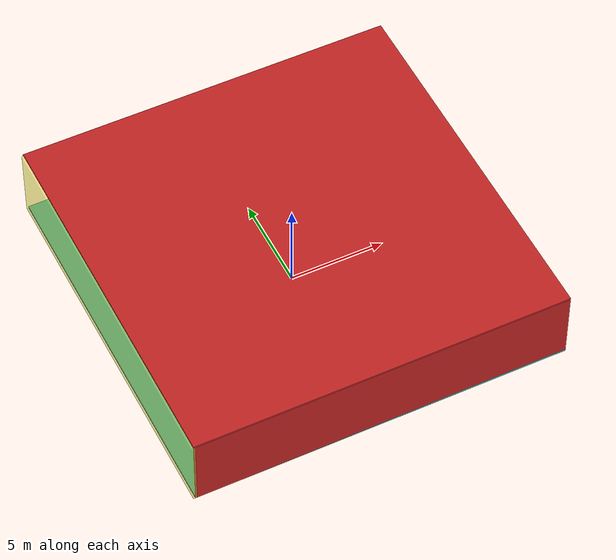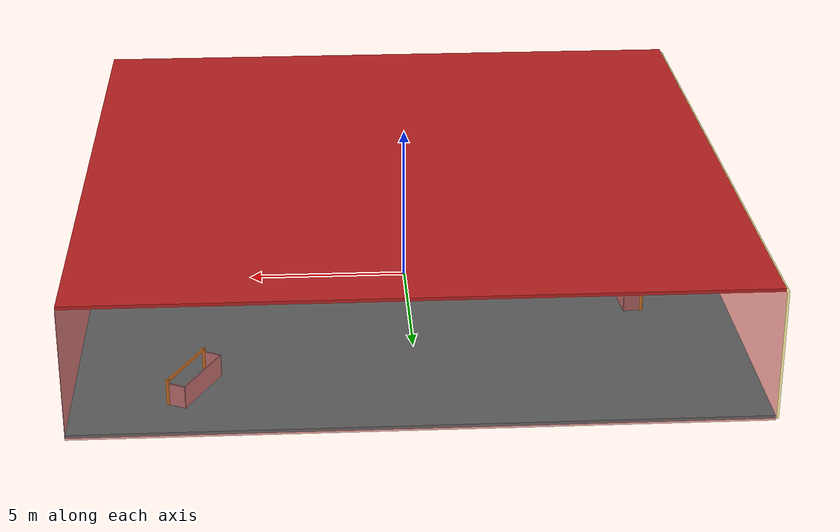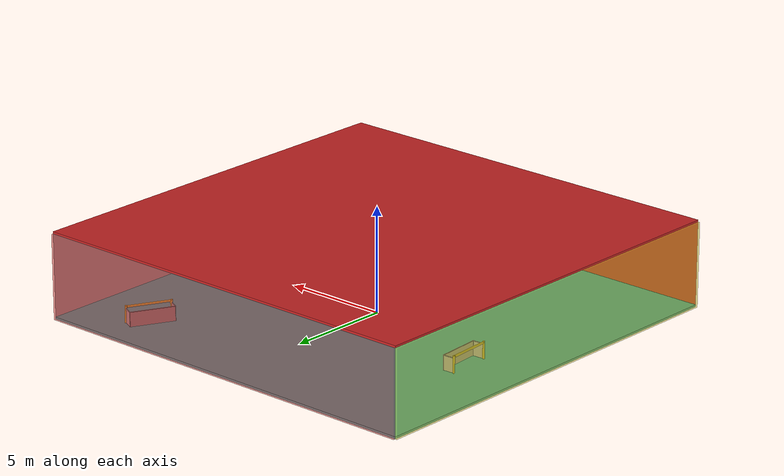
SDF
<sdf version="1.4">
 <world name="default">
  <physics type="ode">
   <max_step_size>0.001</max_step_size>
   <real_time_factor>1</real_time_factor>
   <real_time_update_rate>1000</real_time_update_rate>
   <gravity>0 0 -9.8</gravity>
  </physics>
  <scene><ambient>0.4 0.4 0.4 1</ambient><background>0.7 0.7 0.7 1</background><shadows>1</shadows></scene>
  <model name="Surrounding">
   <static>1</static>
   <link name="Ceiling">
    <collision name="Ceiling_Collision"><geometry><box><size>20 20 0.1</size></box></geometry></collision>
    <visual name="Ceiling_Visual">
     <geometry><box><size>20 20 0.1</size></box></geometry>
     <material>
      <script><uri>file://media/materials/scripts/gazebo.material</uri><name>Gazebo/RedBright</name></script>
     </material>
    </visual>
    <pose>0 0 4.05 0 0 0</pose>
   </link>
   <link name="Wall_South">
    <collision name="Wall_South_Collision">
     <geometry><box><size>20 0 4</size></box></geometry>
     <pose>0 0 2 0 -0 0</pose>
    </collision>
    <visual name="Wall_South_Visual">
     <pose>0 0 2 0 -0 0</pose>
     <geometry><box><size>20 0 4</size></box></geometry>
     <material>
      <script><uri>file://media/materials/scripts/gazebo.material</uri><name>Gazebo/RedGlow</name></script>
     </material>
    </visual>
    <velocity_decay><linear>0</linear><angular>0</angular></velocity_decay>
    <pose>0 -10 0 0 -0 0</pose>
   </link>
   <link name="Wall_East">
    <collision name="Wall_21_Collision">
     <geometry><box><size>20 0 4</size></box></geometry>
     <pose>0 0 2 0 -0 0</pose>
    </collision>
    <visual name="Wall_21_Visual">
     <pose>0 0 2 0 -0 0</pose>
     <geometry><box><size>20 0 4</size></box></geometry>
     <material>
      <script><uri>file://media/materials/scripts/gazebo.material</uri><name>Gazebo/Pioneer2Body</name></script>
     </material>
    </visual>
    <velocity_decay><linear>0</linear><angular>0</angular></velocity_decay>
    <pose>10 0 0 0 -0 1.5708</pose>
   </link>
   <link name="Wall_North">
    <collision name="Wall_22_Collision">
     <geometry><box><size>20 0.2 4</size></box></geometry>
     <pose>0 0 2 0 -0 0</pose>
    </collision>
    <visual name="Wall_22_Visual">
     <pose>0 0 2 0 -0 0</pose>
     <geometry><box><size>20 0.2 4</size></box></geometry>
     <material>
      <script><uri>file://media/materials/scripts/gazebo.material</uri><name>Gazebo/RedTransparent</name></script>
     </material>
    </visual>
    <velocity_decay><linear>0</linear><angular>0</angular></velocity_decay>
    <pose>0 10 0 0 -0 0</pose>
   </link>
   <link name="Wall_West">
    <collision name="Wall_23_Collision">
     <geometry><box><size>20 0.2 4</size></box></geometry>
     <pose>0 0 2 0 -0 0</pose>
    </collision>
    <visual name="Wall_23_Visual">
     <pose>0 0 2 0 -0 0</pose>
     <geometry><box><size>20 0.2 4</size></box></geometry>
     <material>
      <script>
       <uri>file://media/materials/scripts/gazebo.material</uri>
       <name>Gazebo/YellowTransparent</name>
      </script>
     </material>
    </visual>
    <velocity_decay><linear>0</linear><angular>0</angular></velocity_decay>
    <pose>-10 0 0 0 0 -1.5708</pose>
   </link>
   <link name="Ground_link">
    <collision name="collision">
     <pose>0 0 .05 0 -0 0</pose>
     <geometry><box><size>20 20 0.1</size></box></geometry>
    </collision>
    <visual name="visual">
     <pose>0 0 .05 0 -0 0</pose>
     <geometry><box><size>20 20 0.1</size></box></geometry>
     <material>
      <script>
       <uri>file://media/materials/scripts/gazebo.material</uri>
       <name>Gazebo/TurquoiseGlowOutline</name>
      </script>
     </material>
    </visual>
   </link>
   <static>1</static>
  </model>
  <spherical_coordinates>
   <surface_model>EARTH_WGS84</surface_model>
   <latitude_deg>0</latitude_deg>
   <longitude_deg>0</longitude_deg>
   <elevation>0</elevation>
   <heading_deg>0</heading_deg>
  </spherical_coordinates>
  <light name="lightball_0" type="diffuse">
   <diffuse>0.8 0.8 0.8 1</diffuse>
   <specular>0.2 0.2 0.2 1</specular>
   <attenuation>
    <range>100</range>
    <constant>0.7</constant>
    <linear>0.01</linear>
    <quadratic>0.001</quadratic>
   </attenuation>
   <direction>-0.5 0.1 -0.9</direction>
   <pose>-9.42954380552 -2.05389784675 0.99698388728 0 0 0</pose>
  </light>
  <light name="lightball_1" type="diffuse">
   <diffuse>0.8 0.8 0.8 1</diffuse>
   <specular>0.2 0.2 0.2 1</specular>
   <attenuation>
    <range>100</range>
    <constant>0.7</constant>
    <linear>0.01</linear>
    <quadratic>0.001</quadratic>
   </attenuation>
   <direction>-0.5 0.1 -0.9</direction>
   <pose>8.83790377328 -3.81468060128 0.651730914766 0 0 0</pose>
  </light>
  <light name="lightball_2" type="diffuse">
   <diffuse>0.8 0.8 0.8 1</diffuse>
   <specular>0.2 0.2 0.2 1</specular>
   <attenuation>
    <range>100</range>
    <constant>0.7</constant>
    <linear>0.01</linear>
    <quadratic>0.001</quadratic>
   </attenuation>
   <direction>-0.5 0.1 -0.9</direction>
   <pose>-4.44543088188 -9.01201469858 1.83367264963 0 0 0</pose>
  </light>
  <light name="lightball_3" type="diffuse">
   <diffuse>0.8 0.8 0.8 1</diffuse>
   <specular>0.2 0.2 0.2 1</specular>
   <attenuation>
    <range>100</range>
    <constant>0.7</constant>
    <linear>0.01</linear>
    <quadratic>0.001</quadratic>
   </attenuation>
   <direction>-0.5 0.1 -0.9</direction>
   <pose>-2.60016042374 -5.92819158256 1.64892778892 0 0 0</pose>
  </light>
  <light name="lightball_4" type="diffuse">
   <diffuse>0.8 0.8 0.8 1</diffuse>
   <specular>0.2 0.2 0.2 1</specular>
   <attenuation>
    <range>100</range>
    <constant>0.7</constant>
    <linear>0.01</linear>
    <quadratic>0.001</quadratic>
   </attenuation>
   <direction>-0.5 0.1 -0.9</direction>
   <pose>-3.32868390682 3.92534304927 1.25469518113 0 0 0</pose>
  </light>
  <light name="lightball_5" type="diffuse">
   <diffuse>0.8 0.8 0.8 1</diffuse>
   <specular>0.2 0.2 0.2 1</specular>
   <attenuation>
    <range>100</range>
    <constant>0.7</constant>
    <linear>0.01</linear>
    <quadratic>0.001</quadratic>
   </attenuation>
   <direction>-0.5 0.1 -0.9</direction>
   <pose>7.22054290811 7.34794839629 0.613270701663 0 0 0</pose>
  </light>
  <light name="lightball_6" type="diffuse">
   <diffuse>0.8 0.8 0.8 1</diffuse>
   <specular>0.2 0.2 0.2 1</specular>
   <attenuation>
    <range>100</range>
    <constant>0.7</constant>
    <linear>0.01</linear>
    <quadratic>0.001</quadratic>
   </attenuation>
   <direction>-0.5 0.1 -0.9</direction>
   <pose>3.76633871936 4.73747118255 2.4947582885 0 0 0</pose>
  </light>
  <light name="lightball_7" type="diffuse">
   <diffuse>0.8 0.8 0.8 1</diffuse>
   <specular>0.2 0.2 0.2 1</specular>
   <attenuation>
    <range>100</range>
    <constant>0.7</constant>
    <linear>0.01</linear>
    <quadratic>0.001</quadratic>
   </attenuation>
   <direction>-0.5 0.1 -0.9</direction>
   <pose>1.9669194539 0.839732740967 3.18070976607 0 0 0</pose>
  </light>
  <light name="lightball_8" type="diffuse">
   <diffuse>0.8 0.8 0.8 1</diffuse>
   <specular>0.2 0.2 0.2 1</specular>
   <attenuation>
    <range>100</range>
    <constant>0.7</constant>
    <linear>0.01</linear>
    <quadratic>0.001</quadratic>
   </attenuation>
   <direction>-0.5 0.1 -0.9</direction>
   <pose>2.05143931043 8.05415035384 2.98058539888 0 0 0</pose>
  </light>
  <light name="lightball_9" type="diffuse">
   <diffuse>0.8 0.8 0.8 1</diffuse>
   <specular>0.2 0.2 0.2 1</specular>
   <attenuation>
    <range>100</range>
    <constant>0.7</constant>
    <linear>0.01</linear>
    <quadratic>0.001</quadratic>
   </attenuation>
   <direction>-0.5 0.1 -0.9</direction>
   <pose>8.96757574663 -6.91458769018 1.46850071924 0 0 0</pose>
  </light>
  <light name="lightball_10" type="diffuse">
   <diffuse>0.8 0.8 0.8 1</diffuse>
   <specular>0.2 0.2 0.2 1</specular>
   <attenuation>
    <range>100</range>
    <constant>0.7</constant>
    <linear>0.01</linear>
    <quadratic>0.001</quadratic>
   </attenuation>
   <direction>-0.5 0.1 -0.9</direction>
   <pose>-1.13920952896 3.93674247913 3.88788413649 0 0 0</pose>
  </light>
  <light name="lightball_11" type="diffuse">
   <diffuse>0.8 0.8 0.8 1</diffuse>
   <specular>0.2 0.2 0.2 1</specular>
   <attenuation>
    <range>100</range>
    <constant>0.7</constant>
    <linear>0.01</linear>
    <quadratic>0.001</quadratic>
   </attenuation>
   <direction>-0.5 0.1 -0.9</direction>
   <pose>-4.40263587583 9.80738206249 3.51950302773 0 0 0</pose>
  </light>
  <light name="lightball_12" type="diffuse">
   <diffuse>0.8 0.8 0.8 1</diffuse>
   <specular>0.2 0.2 0.2 1</specular>
   <attenuation>
    <range>100</range>
    <constant>0.7</constant>
    <linear>0.01</linear>
    <quadratic>0.001</quadratic>
   </attenuation>
   <direction>-0.5 0.1 -0.9</direction>
   <pose>7.76976966579 3.32533988964 1.23985318897 0 0 0</pose>
  </light>
  <light name="lightball_13" type="diffuse">
   <diffuse>0.8 0.8 0.8 1</diffuse>
   <specular>0.2 0.2 0.2 1</specular>
   <attenuation>
    <range>100</range>
    <constant>0.7</constant>
    <linear>0.01</linear>
    <quadratic>0.001</quadratic>
   </attenuation>
   <direction>-0.5 0.1 -0.9</direction>
   <pose>2.85516300095 -9.36015661638 3.31704105814 0 0 0</pose>
  </light>
  <include>
   <uri>model://robocup_3Dsim_goal</uri>
   <pose>-7.21673822293 2.17120500623 0 0 0 0.0617084061047</pose>
  </include>
  <include>
   <uri>model://construction_cone</uri>
   <pose>4.61996591637 -4.54799106162 0 0 0 3.11595060968</pose>
  </include>
  <include>
   <uri>model://robocup_3Dsim_goal</uri>
   <pose>6.94770797313 -4.33195627343 0 0 0 1.34001128975</pose>
  </include>
  <include>
   <uri>model://robocup_3Dsim_goal</uri>
   <pose>6.73442249321 7.46573801812 0 0 0 2.66798728968</pose>
  </include>
 </world>
</sdf>

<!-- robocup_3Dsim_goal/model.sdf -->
<sdf version="1.5">
  <model name="robocup_3d_goal">
    <static>true</static>
    <link name="left_post">
      <pose>0 1.05 0.45 0 0 0</pose>
      <collision name="collision">
        <geometry>
          <cylinder>
            <radius>0.05</radius>
            <length>0.9</length>
          </cylinder>
        </geometry>
      </collision>
      <visual name="visual">
        <geometry>
          <cylinder>
            <radius>0.05</radius>
            <length>0.9</length>
          </cylinder>
        </geometry>
        <material>
          <script>
            <uri>file://media/materials/scripts/gazebo.material</uri>
            <name>Gazebo/ZincYellow</name>
          </script>
        </material>
      </visual>
    </link>
    <link name="left_support_horiz_lower">
      <pose>0.30 1.05 0.01 0 0 0</pose>
      <collision name="collision">
        <geometry>
          <box>
            <size>0.50 0.02 0.02</size>
          </box>
        </geometry>
      </collision>
      <visual name="visual">
        <geometry>
          <box>
            <size>0.50 0.02 0.02</size>
          </box>
        </geometry>
        <material>
          <script>
            <uri>file://media/materials/scripts/gazebo.material</uri>
            <name>Gazebo/White</name>
          </script>
        </material>
      </visual>
    </link>
    <link name="left_support_horiz_upper">
      <pose>0.30 1.05 0.79 0 0 0</pose>
      <collision name="collision">
        <geometry>
          <box>
            <size>0.50 0.02 0.02</size>
          </box>
        </geometry>
      </collision>
      <visual name="visual">
        <geometry>
          <box>
            <size>0.50 0.02 0.02</size>
          </box>
        </geometry>
        <material>
          <script>
            <uri>file://media/materials/scripts/gazebo.material</uri>
            <name>Gazebo/White</name>
          </script>
        </material>
      </visual>
    </link>
    <link name="left_support_vertical">
      <pose>0.56 1.05 0.4 0 1.5708 0</pose>
      <collision name="collision">
        <geometry>
          <box>
            <size>0.80 0.02 0.02</size>
          </box>
        </geometry>
      </collision>
      <visual name="visual">
        <geometry>
          <box>
            <size>0.80 0.02 0.02</size>
          </box>
        </geometry>
        <material>
          <script>
            <uri>file://media/materials/scripts/gazebo.material</uri>
            <name>Gazebo/White</name>
          </script>
        </material>
      </visual>
    </link>
    <link name="right_support_horiz_lower">
      <pose>0.30 -1.05 0.01 0 0 0</pose>
      <collision name="collision">
        <geometry>
          <box>
            <size>0.50 0.02 0.02</size>
          </box>
        </geometry>
      </collision>
      <visual name="visual">
        <geometry>
          <box>
            <size>0.50 0.02 0.02</size>
          </box>
        </geometry>
        <material>
          <script>
            <uri>file://media/materials/scripts/gazebo.material</uri>
            <name>Gazebo/White</name>
          </script>
        </material>
      </visual>
    </link>
    <link name="right_support_horiz_upper">
      <pose>0.30 -1.05 0.79 0 0 0</pose>
      <collision name="collision">
        <geometry>
          <box>
            <size>0.50 0.02 0.02</size>
          </box>
        </geometry>
      </collision>
      <visual name="visual">
        <geometry>
          <box>
            <size>0.50 0.02 0.02</size>
          </box>
        </geometry>
        <material>
          <script>
            <uri>file://media/materials/scripts/gazebo.material</uri>
            <name>Gazebo/White</name>
          </script>
        </material>
      </visual>
    </link>
    <link name="right_support_vertical">
      <pose>0.56 -1.05 0.4 0 1.5708 0</pose>
      <collision name="collision">
        <geometry>
          <box>
            <size>0.80 0.02 0.02</size>
          </box>
        </geometry>
      </collision>
      <visual name="visual">
        <geometry>
          <box>
            <size>0.80 0.02 0.02</size>
          </box>
        </geometry>
        <material>
          <script>
            <uri>file://media/materials/scripts/gazebo.material</uri>
            <name>Gazebo/White</name>
          </script>
        </material>
      </visual>
    </link>
    <link name="center_support_horiz_lower">
      <pose>0.56 0 0.01 0 1.5708 0</pose>
      <collision name="collision">
        <geometry>
          <box>
            <size>0.02 2.08 0.02</size>
          </box>
        </geometry>
      </collision>
      <visual name="visual">
        <geometry>
          <box>
            <size>0.02 2.08 0.02</size>
          </box>
        </geometry>
        <material>
          <script>
            <uri>file://media/materials/scripts/gazebo.material</uri>
            <name>Gazebo/White</name>
          </script>
        </material>
      </visual>
    </link>
    <link name="center_support_horiz_upper">
      <pose>0.56 0 0.79 0 1.5708 0</pose>
      <collision name="collision">
        <geometry>
          <box>
            <size>0.02 2.08 0.02</size>
          </box>
        </geometry>
      </collision>
      <visual name="visual">
        <geometry>
          <box>
            <size>0.02 2.08 0.02</size>
          </box>
        </geometry>
        <material>
          <script>
            <uri>file://media/materials/scripts/gazebo.material</uri>
            <name>Gazebo/White</name>
          </script>
        </material>
      </visual>
    </link>
    <link name="right_post">
      <pose>0 -1.05 0.45 0 0 0</pose>
      <collision name="collision">
        <geometry>
          <cylinder>
            <radius>0.05</radius>
            <length>0.9</length>
          </cylinder>
        </geometry>
      </collision>
      <visual name="visual">
        <geometry>
          <cylinder>
            <radius>0.05</radius>
            <length>0.9</length>
          </cylinder>
        </geometry>
        <material>
          <script>
            <uri>file://media/materials/scripts/gazebo.material</uri>
            <name>Gazebo/ZincYellow</name>
          </script>
        </material>
      </visual>
    </link>
    <link name="crossbar">
      <pose>0 0 0.85 1.57 1.57 0</pose>
      <collision name="collision">
        <geometry>
          <cylinder>
            <radius>0.05</radius>
            <length>2.0</length>
          </cylinder>
        </geometry>
      </collision>
      <visual name="visual">
        <geometry>
          <cylinder>
            <radius>0.05</radius>
            <length>2.0</length>
          </cylinder>
        </geometry>
        <material>
          <script>
            <uri>file://media/materials/scripts/gazebo.material</uri>
            <name>Gazebo/ZincYellow</name>
          </script>
        </material>
      </visual>
    </link>
    <link name="center_net">
      <pose>0.56 0 0.40 0 0 0</pose>
      <collision name="collision">
        <geometry>
          <box>
            <size>0.01 2.1 0.80</size>
          </box>
        </geometry>
      </collision>
      <visual name="visual">
        <geometry>
          <box>
            <size>0.01 2.1 0.80</size>
          </box>
        </geometry>
        <material>
          <script>
            <uri>model://../model_source/models/robocup09_spl_field/materials/scripts/</uri>
            <uri>model://../model_source/models/robocup09_spl_field/materials/textures/</uri>
            <name>RoboCup/Net</name>
          </script>
        </material>
      </visual>
    </link>
    <link name="left_net">
      <pose>0.30 1.05 0.40 0 0 0</pose>
      <collision name="collision">
        <geometry>
          <box>
            <size>0.50 0.01 0.76</size>
          </box>
        </geometry>
      </collision>
      <visual name="visual">
        <geometry>
          <box>
            <size>0.50 0.01 0.76</size>
          </box>
        </geometry>
        <material>
          <script>
            <uri>model://../model_source/models/robocup09_spl_field/materials/scripts/</uri>
            <uri>model://../model_source/models/robocup09_spl_field/materials/textures/</uri>
            <name>RoboCup/Net</name>
          </script>
        </material>
      </visual>
    </link>
    <link name="right_net">
      <pose>0.30 -1.05 0.40 0 0 0</pose>
      <collision name="collision">
        <geometry>
          <box>
            <size>0.50 0.01 0.76</size>
          </box>
        </geometry>
      </collision>
      <visual name="visual">
        <geometry>
          <box>
            <size>0.50 0.01 0.76</size>
          </box>
        </geometry>
        <material>
          <script>
            <uri>model://../model_source/models/robocup09_spl_field/materials/scripts/</uri>
            <uri>model://../model_source/models/robocup09_spl_field/materials/textures/</uri>
            <name>RoboCup/Net</name>
          </script>
        </material>
      </visual>
    </link>
  </model>
</sdf>

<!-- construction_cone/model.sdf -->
<sdf version="1.5">
  <model name="Construction Cone">
    <link name="link">
      <collision name="collision">
        <geometry>
          <mesh>
            <scale>10 10 10</scale>
            <uri>file://isr-testbed/construction_cone/meshes/construction_cone.dae</uri>
          </mesh>
        </geometry>
      </collision>
      <visual name="visual">
        <geometry>
          <mesh>
            <scale>10 10 10</scale>
            <uri>file://isr-testbed/construction_cone/meshes/construction_cone.dae</uri>
          </mesh>
        </geometry>
      </visual>
    </link>
  </model>
</sdf>
